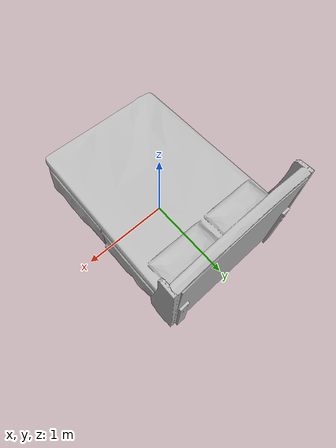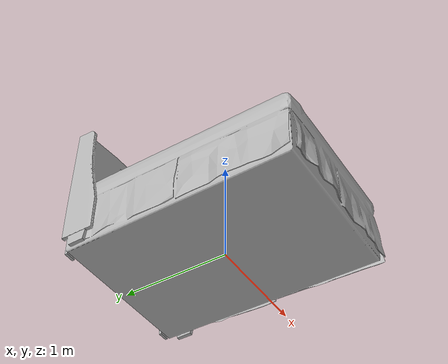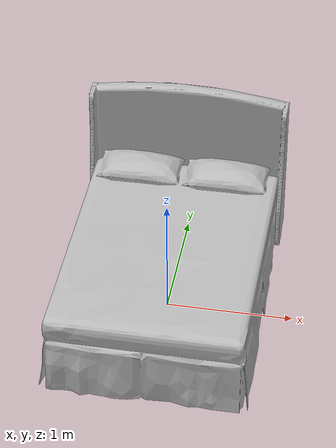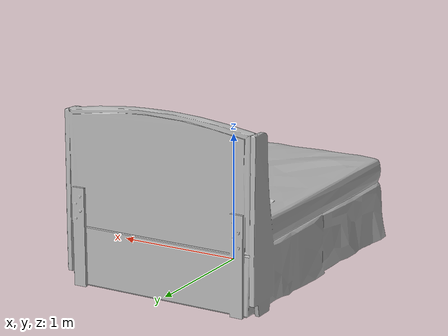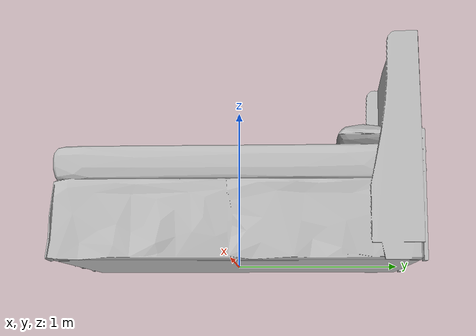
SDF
<sdf version="1.6">
	<model name="Headboards_O84d2b8173e76_lod0">
		<link name="main_link">
			<visual name="visual_RootNode">
				<geometry>
					<mesh>
						<uri>model://Headboards_O84d2b8173e76_lod0/meshes/visual_RootNode.dae</uri>
					</mesh>
				</geometry>
			</visual>
			<collision name="collision_RootNode_lod0_0">
				<geometry>
					<mesh>
						<uri>model://Headboards_O84d2b8173e76_lod0/meshes/collision_RootNode_lod0_0.dae</uri>
					</mesh>
				</geometry>
			</collision>
		</link>
	</model>
</sdf>
